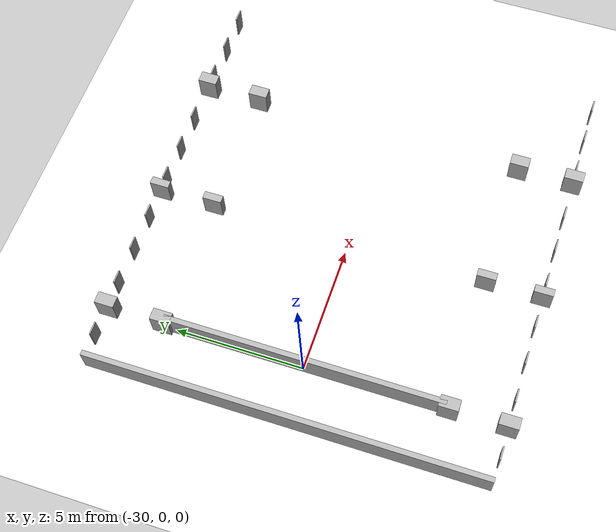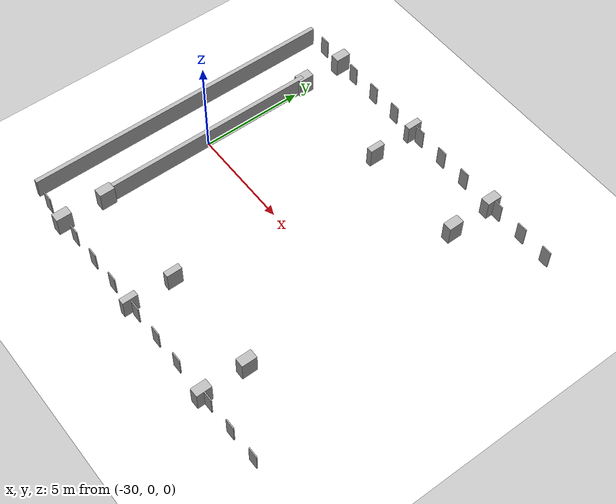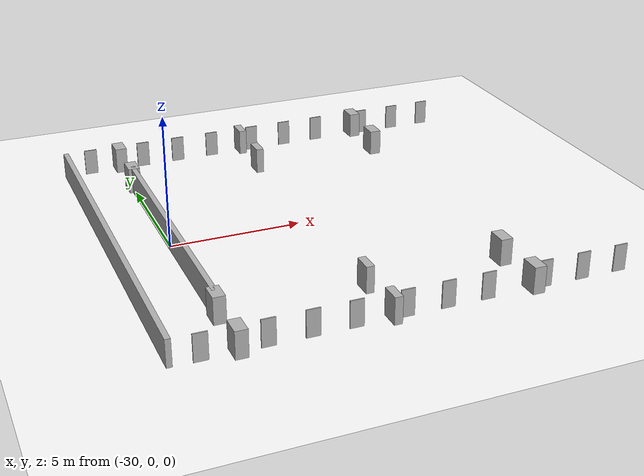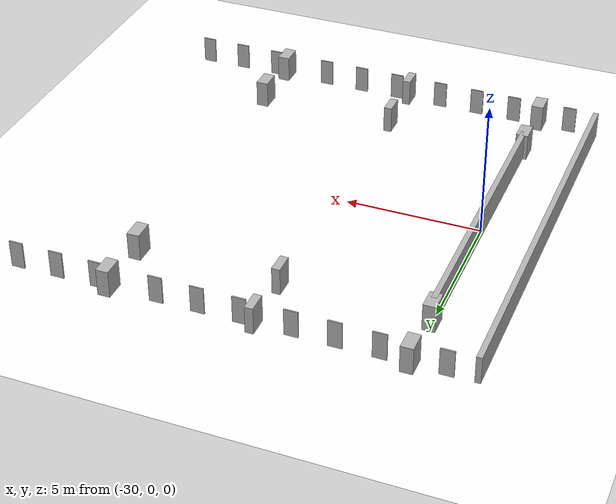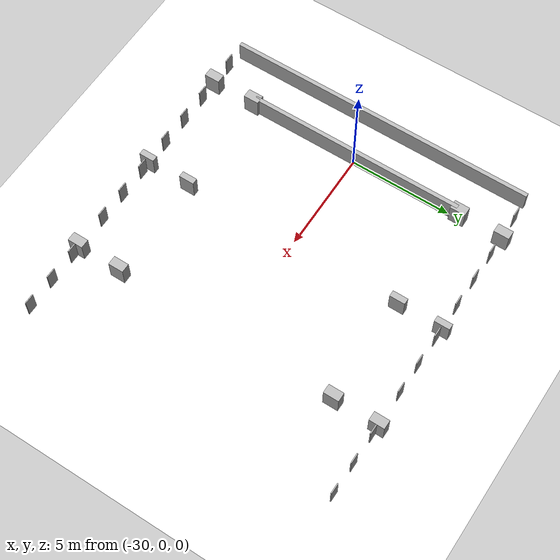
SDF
<sdf version="1.7">
 <world name="simple_corridor">
  <model name="ground_plane">
   <static>true</static>
   <link name="link">
    <collision name="collision">
     <geometry><plane><normal>0 0 1</normal><size>100 100</size></plane></geometry>
    </collision>
    <visual name="visual">
     <geometry><plane><normal>0 0 1</normal><size>100 100</size></plane></geometry>
     <material><ambient>1 1 1 1</ambient><diffuse>1 1 1 1</diffuse></material>
    </visual>
   </link>
  </model>
  <model name="wall_start_under">
   <static>true</static>
   <pose>-30 0 0 0 0 0</pose>
   <link name="link">
    <collision name="collision"><geometry><box><size>0.2 10.8 2.0</size></box></geometry></collision>
    <visual name="visual">
     <geometry><box><size>0.2 10.8 2.0</size></box></geometry>
     <material><diffuse>0.7 0.7 0.7 1</diffuse></material>
    </visual>
   </link>
  </model>
  <model name="column_large_left_1">
   <static>true</static>
   <pose>-30 5.5 0 0 0 0</pose>
   <link name="link">
    <collision name="collision"><geometry><box><size>0.45 0.75 2.0</size></box></geometry></collision>
    <visual name="visual">
     <geometry><box><size>0.45 0.75 2.0</size></box></geometry>
     <material><diffuse>0.7 0.7 0.7 1</diffuse></material>
    </visual>
   </link>
  </model>
  <model name="column_small_left_2">
   <static>true</static>
   <pose>-24.7 5.5 0 0 0 0</pose>
   <link name="link">
    <collision name="collision"><geometry><box><size>0.3 0.75 2.0</size></box></geometry></collision>
    <visual name="visual">
     <geometry><box><size>0.3 0.75 2.0</size></box></geometry>
     <material><diffuse>0.7 0.7 0.7 1</diffuse></material>
    </visual>
   </link>
  </model>
  <model name="column_large_left_3">
   <static>true</static>
   <pose>-19.45 5.5 0 0 0 0</pose>
   <link name="link">
    <collision name="collision"><geometry><box><size>0.45 0.75 2.0</size></box></geometry></collision>
    <visual name="visual">
     <geometry><box><size>0.45 0.75 2.0</size></box></geometry>
     <material><diffuse>0.7 0.7 0.7 1</diffuse></material>
    </visual>
   </link>
  </model>
  <model name="column_large_right_1">
   <static>true</static>
   <pose>-30 -5.5 0 0 0 0</pose>
   <link name="link">
    <collision name="collision"><geometry><box><size>0.45 0.75 2.0</size></box></geometry></collision>
    <visual name="visual">
     <geometry><box><size>0.45 0.75 2.0</size></box></geometry>
     <material><diffuse>0.7 0.7 0.7 1</diffuse></material>
    </visual>
   </link>
  </model>
  <model name="column_small_right_2">
   <static>true</static>
   <pose>-24.7 -5.5 0 0 0 0</pose>
   <link name="link">
    <collision name="collision"><geometry><box><size>0.3 0.75 2.0</size></box></geometry></collision>
    <visual name="visual">
     <geometry><box><size>0.3 0.75 2.0</size></box></geometry>
     <material><diffuse>0.7 0.7 0.7 1</diffuse></material>
    </visual>
   </link>
  </model>
  <model name="column_large_right_3">
   <static>true</static>
   <pose>-19.45 -5.5 0 0 0 0</pose>
   <link name="link">
    <collision name="collision"><geometry><box><size>0.45 0.75 2.0</size></box></geometry></collision>
    <visual name="visual">
     <geometry><box><size>0.45 0.75 2.0</size></box></geometry>
     <material><diffuse>0.7 0.7 0.7 1</diffuse></material>
    </visual>
   </link>
  </model>
  <model name="ban_large_left_1">
   <static>true</static>
   <pose>-30 7.7 0 0 0 0</pose>
   <link name="link">
    <collision name="collision"><geometry><box><size>0.45 0.75 2.0</size></box></geometry></collision>
    <visual name="visual">
     <geometry><box><size>0.45 0.75 2.0</size></box></geometry>
     <material><diffuse>0.7 0.7 0.7 1</diffuse></material>
    </visual>
   </link>
  </model>
  <model name="ban_small_left_2">
   <static>true</static>
   <pose>-24.7 7.7 0 0 0 0</pose>
   <link name="link">
    <collision name="collision"><geometry><box><size>0.3 0.75 2.0</size></box></geometry></collision>
    <visual name="visual">
     <geometry><box><size>0.3 0.75 2.0</size></box></geometry>
     <material><diffuse>0.7 0.7 0.7 1</diffuse></material>
    </visual>
   </link>
  </model>
  <model name="ban_large_left_3">
   <static>true</static>
   <pose>-19.45 7.7 0 0 0 0</pose>
   <link name="link">
    <collision name="collision"><geometry><box><size>0.45 0.75 2.0</size></box></geometry></collision>
    <visual name="visual">
     <geometry><box><size>0.45 0.75 2.0</size></box></geometry>
     <material><diffuse>0.7 0.7 0.7 1</diffuse></material>
    </visual>
   </link>
  </model>
  <model name="ban_large_right_1">
   <static>true</static>
   <pose>-30 -7.7 0 0 0 0</pose>
   <link name="link">
    <collision name="collision"><geometry><box><size>0.45 0.75 2.0</size></box></geometry></collision>
    <visual name="visual">
     <geometry><box><size>0.45 0.75 2.0</size></box></geometry>
     <material><diffuse>0.7 0.7 0.7 1</diffuse></material>
    </visual>
   </link>
  </model>
  <model name="ban_small_right_2">
   <static>true</static>
   <pose>-24.7 -7.7 0 0 0 0</pose>
   <link name="link">
    <collision name="collision"><geometry><box><size>0.3 0.75 2.0</size></box></geometry></collision>
    <visual name="visual">
     <geometry><box><size>0.3 0.75 2.0</size></box></geometry>
     <material><diffuse>0.7 0.7 0.7 1</diffuse></material>
    </visual>
   </link>
  </model>
  <model name="ban_large_right_3">
   <static>true</static>
   <pose>-19.45 -7.7 0 0 0 0</pose>
   <link name="link">
    <collision name="collision"><geometry><box><size>0.45 0.75 2.0</size></box></geometry></collision>
    <visual name="visual">
     <geometry><box><size>0.45 0.75 2.0</size></box></geometry>
     <material><diffuse>0.7 0.7 0.7 1</diffuse></material>
    </visual>
   </link>
  </model>
  <model name="bar_left_1">
   <static>true</static>
   <pose>-29 7.7 0 0 0 0</pose>
   <link name="link">
    <collision name="collision"><geometry><box><size>0.5 0.05 2.0</size></box></geometry></collision>
    <visual name="visual">
     <geometry><box><size>0.5 0.05 2.0</size></box></geometry>
     <material><diffuse>0.7 0.7 0.7 1</diffuse></material>
    </visual>
   </link>
  </model>
  <model name="bar_left_2">
   <static>true</static>
   <pose>-27.5 7.7 0 0 0 0</pose>
   <link name="link">
    <collision name="collision"><geometry><box><size>0.5 0.05 2.0</size></box></geometry></collision>
    <visual name="visual">
     <geometry><box><size>0.5 0.05 2.0</size></box></geometry>
     <material><diffuse>0.7 0.7 0.7 1</diffuse></material>
    </visual>
   </link>
  </model>
  <model name="bar_left_3">
   <static>true</static>
   <pose>-26 7.7 0 0 0 0</pose>
   <link name="link">
    <collision name="collision"><geometry><box><size>0.5 0.05 2.0</size></box></geometry></collision>
    <visual name="visual">
     <geometry><box><size>0.5 0.05 2.0</size></box></geometry>
     <material><diffuse>0.7 0.7 0.7 1</diffuse></material>
    </visual>
   </link>
  </model>
  <model name="bar_left_4">
   <static>true</static>
   <pose>-24.2 7.7 0 0 0 0</pose>
   <link name="link">
    <collision name="collision"><geometry><box><size>0.5 0.05 2.0</size></box></geometry></collision>
    <visual name="visual">
     <geometry><box><size>0.5 0.05 2.0</size></box></geometry>
     <material><diffuse>0.7 0.7 0.7 1</diffuse></material>
    </visual>
   </link>
  </model>
  <model name="bar_left_5">
   <static>true</static>
   <pose>-22.7 7.7 0 0 0 0</pose>
   <link name="link">
    <collision name="collision"><geometry><box><size>0.5 0.05 2.0</size></box></geometry></collision>
    <visual name="visual">
     <geometry><box><size>0.5 0.05 2.0</size></box></geometry>
     <material><diffuse>0.7 0.7 0.7 1</diffuse></material>
    </visual>
   </link>
  </model>
  <model name="bar_left_6">
   <static>true</static>
   <pose>-21.2 7.7 0 0 0 0</pose>
   <link name="link">
    <collision name="collision"><geometry><box><size>0.5 0.05 2.0</size></box></geometry></collision>
    <visual name="visual">
     <geometry><box><size>0.5 0.05 2.0</size></box></geometry>
     <material><diffuse>0.7 0.7 0.7 1</diffuse></material>
    </visual>
   </link>
  </model>
  <model name="bar_left_7">
   <static>true</static>
   <pose>-19 7.7 0 0 0 0</pose>
   <link name="link">
    <collision name="collision"><geometry><box><size>0.5 0.05 2.0</size></box></geometry></collision>
    <visual name="visual">
     <geometry><box><size>0.5 0.05 2.0</size></box></geometry>
     <material><diffuse>0.7 0.7 0.7 1</diffuse></material>
    </visual>
   </link>
  </model>
  <model name="bar_left_8">
   <static>true</static>
   <pose>-17.5 7.7 0 0 0 0</pose>
   <link name="link">
    <collision name="collision"><geometry><box><size>0.5 0.05 2.0</size></box></geometry></collision>
    <visual name="visual">
     <geometry><box><size>0.5 0.05 2.0</size></box></geometry>
     <material><diffuse>0.7 0.7 0.7 1</diffuse></material>
    </visual>
   </link>
  </model>
  <model name="bar_left_9">
   <static>true</static>
   <pose>-16 7.7 0 0 0 0</pose>
   <link name="link">
    <collision name="collision"><geometry><box><size>0.5 0.05 2.0</size></box></geometry></collision>
    <visual name="visual">
     <geometry><box><size>0.5 0.05 2.0</size></box></geometry>
     <material><diffuse>0.7 0.7 0.7 1</diffuse></material>
    </visual>
   </link>
  </model>
  <model name="bar_left_38">
   <static>true</static>
   <pose>-31.2 7.7 0 0 0 0</pose>
   <link name="link">
    <collision name="collision"><geometry><box><size>0.5 0.05 2.0</size></box></geometry></collision>
    <visual name="visual">
     <geometry><box><size>0.5 0.05 2.0</size></box></geometry>
     <material><diffuse>0.7 0.7 0.7 1</diffuse></material>
    </visual>
   </link>
  </model>
  <model name="bar_right_1">
   <static>true</static>
   <pose>-29 -7.7 0 0 0 0</pose>
   <link name="link">
    <collision name="collision"><geometry><box><size>0.5 0.05 2.0</size></box></geometry></collision>
    <visual name="visual">
     <geometry><box><size>0.5 0.05 2.0</size></box></geometry>
     <material><diffuse>0.7 0.7 0.7 1</diffuse></material>
    </visual>
   </link>
  </model>
  <model name="bar_right_2">
   <static>true</static>
   <pose>-27.5 -7.7 0 0 0 0</pose>
   <link name="link">
    <collision name="collision"><geometry><box><size>0.5 0.05 2.0</size></box></geometry></collision>
    <visual name="visual">
     <geometry><box><size>0.5 0.05 2.0</size></box></geometry>
     <material><diffuse>0.7 0.7 0.7 1</diffuse></material>
    </visual>
   </link>
  </model>
  <model name="bar_right_3">
   <static>true</static>
   <pose>-26 -7.7 0 0 0 0</pose>
   <link name="link">
    <collision name="collision"><geometry><box><size>0.5 0.05 2.0</size></box></geometry></collision>
    <visual name="visual">
     <geometry><box><size>0.5 0.05 2.0</size></box></geometry>
     <material><diffuse>0.7 0.7 0.7 1</diffuse></material>
    </visual>
   </link>
  </model>
  <model name="bar_right_4">
   <static>true</static>
   <pose>-24.2 -7.7 0 0 0 0</pose>
   <link name="link">
    <collision name="collision"><geometry><box><size>0.5 0.05 2.0</size></box></geometry></collision>
    <visual name="visual">
     <geometry><box><size>0.5 0.05 2.0</size></box></geometry>
     <material><diffuse>0.7 0.7 0.7 1</diffuse></material>
    </visual>
   </link>
  </model>
  <model name="bar_right_5">
   <static>true</static>
   <pose>-22.7 -7.7 0 0 0 0</pose>
   <link name="link">
    <collision name="collision"><geometry><box><size>0.5 0.05 2.0</size></box></geometry></collision>
    <visual name="visual">
     <geometry><box><size>0.5 0.05 2.0</size></box></geometry>
     <material><diffuse>0.7 0.7 0.7 1</diffuse></material>
    </visual>
   </link>
  </model>
  <model name="bar_right_6">
   <static>true</static>
   <pose>-21.2 -7.7 0 0 0 0</pose>
   <link name="link">
    <collision name="collision"><geometry><box><size>0.5 0.05 2.0</size></box></geometry></collision>
    <visual name="visual">
     <geometry><box><size>0.5 0.05 2.0</size></box></geometry>
     <material><diffuse>0.7 0.7 0.7 1</diffuse></material>
    </visual>
   </link>
  </model>
  <model name="bar_right_7">
   <static>true</static>
   <pose>-19 -7.7 0 0 0 0</pose>
   <link name="link">
    <collision name="collision"><geometry><box><size>0.5 0.05 2.0</size></box></geometry></collision>
    <visual name="visual">
     <geometry><box><size>0.5 0.05 2.0</size></box></geometry>
     <material><diffuse>0.7 0.7 0.7 1</diffuse></material>
    </visual>
   </link>
  </model>
  <model name="bar_right_8">
   <static>true</static>
   <pose>-17.5 -7.7 0 0 0 0</pose>
   <link name="link">
    <collision name="collision"><geometry><box><size>0.5 0.05 2.0</size></box></geometry></collision>
    <visual name="visual">
     <geometry><box><size>0.5 0.05 2.0</size></box></geometry>
     <material><diffuse>0.7 0.7 0.7 1</diffuse></material>
    </visual>
   </link>
  </model>
  <model name="bar_right_9">
   <static>true</static>
   <pose>-16 -7.7 0 0 0 0</pose>
   <link name="link">
    <collision name="collision"><geometry><box><size>0.5 0.05 2.0</size></box></geometry></collision>
    <visual name="visual">
     <geometry><box><size>0.5 0.05 2.0</size></box></geometry>
     <material><diffuse>0.7 0.7 0.7 1</diffuse></material>
    </visual>
   </link>
  </model>
  <model name="bar_right_38">
   <static>true</static>
   <pose>-31.2 -7.7 0 0 0 0</pose>
   <link name="link">
    <collision name="collision"><geometry><box><size>0.5 0.05 2.0</size></box></geometry></collision>
    <visual name="visual">
     <geometry><box><size>0.5 0.05 2.0</size></box></geometry>
     <material><diffuse>0.7 0.7 0.7 1</diffuse></material>
    </visual>
   </link>
  </model>
  <model name="wall_start_under_opposite">
   <static>true</static>
   <pose>-32.2 0 0 0 0 0</pose>
   <link name="link">
    <collision name="collision"><geometry><box><size>0.2 15.4 2.0</size></box></geometry></collision>
    <visual name="visual">
     <geometry><box><size>0.2 15.4 2.0</size></box></geometry>
     <material><diffuse>0.7 0.7 0.7 1</diffuse></material>
    </visual>
   </link>
  </model>
 </world>
</sdf>
